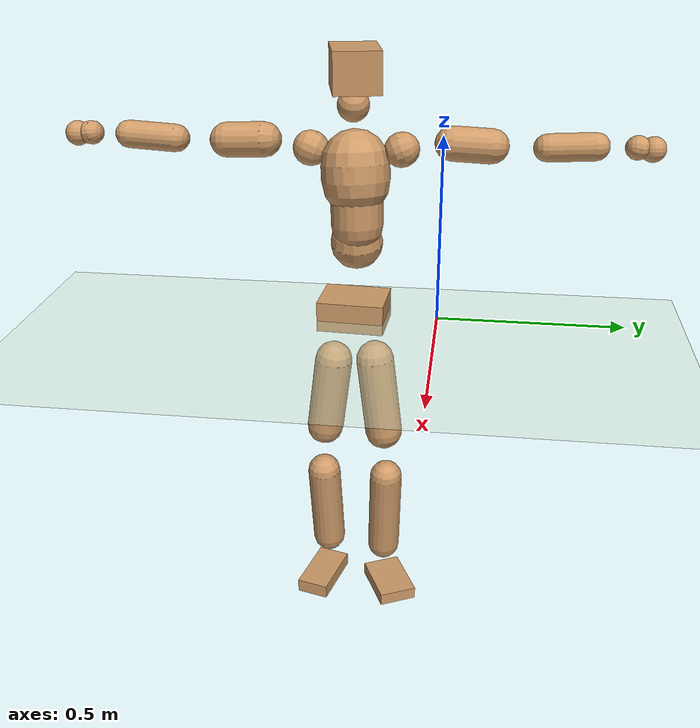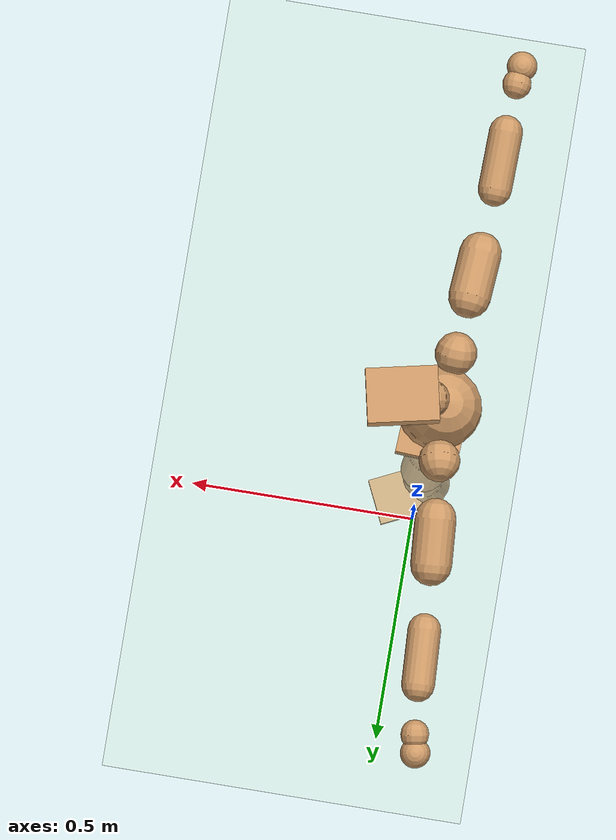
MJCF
<mujoco model="humanoid">
  <compiler coordinate="local" angle="radian"/>
  <default>
    <joint damping="0.0" armature="0.01" stiffness="0.0" limited="true"/>
    <geom conaffinity="1" condim="3" contype="7" margin="0.001" rgba="0.8 0.6 .4 1"/>
  </default>
  <asset>
    <texture type="skybox" builtin="gradient" rgb1=".4 .5 .6" rgb2="0 0 0" width="100" height="100"/>
    <texture builtin="flat" height="1278" mark="cross" markrgb="1 1 1" name="texgeom" random="0.01" rgb1="0.8 0.6 0.4" rgb2="0.8 0.6 0.4" type="cube" width="127"/>
    <texture builtin="checker" height="100" name="texplane" rgb1="0 0 0" rgb2="0.8 0.8 0.8" type="2d" width="100"/>
    <material name="MatPlane" reflectance="0.5" shininess="1" specular="1" texrepeat="60 60" texture="texplane"/>
    <material name="geom" texture="texgeom" texuniform="true"/>
  </asset>
  <worldbody>
    <light cutoff="100" diffuse="1 1 1" dir="-0 0 -1.3" directional="true" exponent="1" pos="0 0 1.3" specular=".1 .1 .1"/>
    <geom conaffinity="1" condim="3" name="floor" pos="0 0 0" rgba="0.8 0.9 0.8 1" size="100 100 .2" type="plane" material="MatPlane"/>
    <body name="Pelvis" pos="-0.0038 -0.2291 0.017">
      <freejoint name="Pelvis"/>
      <geom type="box" contype="1" conaffinity="1" density="5359.374694" pos="-0.0108 0.0006 -0.0078" size="0.0707 0.0908 0.0412" quat="0.9996 0.0000 0.0000 -0.0299" name="Pelvis"/>
      <body name="L_Hip" pos="-0.0185 0.0486 -0.0775">
        <joint name="L_Hip_x" type="hinge" pos="0 0 0" axis="1 0 0" stiffness="1600" damping="160" armature="0.02" range="-180.0000 180.0000"/>
        <joint name="L_Hip_y" type="hinge" pos="0 0 0" axis="0 1 0" stiffness="1600" damping="160" armature="0.02" range="-180.0000 180.0000"/>
        <joint name="L_Hip_z" type="hinge" pos="0 0 0" axis="0 0 1" stiffness="1600" damping="160" armature="0.02" range="-180.0000 180.0000"/>
        <geom type="capsule" contype="1" conaffinity="1" density="2040.816327" size="0.0531" fromto="0.0035 0.0101 -0.0824 0.0131 0.0381 -0.3095" name="L_Hip"/>
        <body name="L_Knee" pos="0.0166 0.0482 -0.3919">
          <joint name="L_Knee_x" type="hinge" pos="0 0 0" axis="1 0 0" stiffness="1600" damping="160" armature="0.02" range="-180.0000 180.0000"/>
          <joint name="L_Knee_y" type="hinge" pos="0 0 0" axis="0 1 0" stiffness="1600" damping="160" armature="0.02" range="-180.0000 180.0000"/>
          <joint name="L_Knee_z" type="hinge" pos="0 0 0" axis="0 0 1" stiffness="1600" damping="160" armature="0.02" range="-180.0000 180.0000"/>
          <geom type="capsule" contype="1" conaffinity="1" density="1234.567901" size="0.0471" fromto="-0.0057 -0.0020 -0.0769 -0.0249 -0.0088 -0.3385" name="L_Knee"/>
          <body name="L_Ankle" pos="-0.0306 -0.0108 -0.4154">
            <joint name="L_Ankle_x" type="hinge" pos="0 0 0" axis="1 0 0" stiffness="1600" damping="160" armature="0.02" range="-180.0000 180.0000"/>
            <joint name="L_Ankle_y" type="hinge" pos="0 0 0" axis="0 1 0" stiffness="1600" damping="160" armature="0.02" range="-180.0000 180.0000"/>
            <joint name="L_Ankle_z" type="hinge" pos="0 0 0" axis="0 0 1" stiffness="1600" damping="160" armature="0.02" range="-180.0000 180.0000"/>
            <geom type="box" contype="1" conaffinity="1" density="999.999972" pos="0.0565 0.0267 -0.0300" size="0.0804 0.0548 0.0182" quat="0.9757 0.0000 0.0000 0.2192" name="L_Ankle"/>
            <body name="L_Toe" pos="0.1129 0.0534 -0.0599">
              <joint name="L_Toe_x" type="hinge" pos="0 0 0" axis="1 0 0" stiffness="1000" damping="100" armature="0.02" range="-180.0000 180.0000"/>
              <joint name="L_Toe_y" type="hinge" pos="0 0 0" axis="0 1 0" stiffness="1000" damping="100" armature="0.02" range="-180.0000 180.0000"/>
              <joint name="L_Toe_z" type="hinge" pos="0 0 0" axis="0 0 1" stiffness="1000" damping="100" armature="0.02" range="-180.0000 180.0000"/>
              <geom type="box" contype="1" conaffinity="1" density="7057068.787945" pos="0.0000 0.0000 0.0327" size="0.001 0.0025 0.001" quat="0.9749 0.0000 0.0000 0.2228" name="L_Toe"/>
            </body>
          </body>
        </body>
      </body>
      <body name="R_Hip" pos="-0.015 -0.0492 -0.086">
        <joint name="R_Hip_x" type="hinge" pos="0 0 0" axis="1 0 0" stiffness="1600" damping="160" armature="0.02" range="-180.0000 180.0000"/>
        <joint name="R_Hip_y" type="hinge" pos="0 0 0" axis="0 1 0" stiffness="1600" damping="160" armature="0.02" range="-180.0000 180.0000"/>
        <joint name="R_Hip_z" type="hinge" pos="0 0 0" axis="0 0 1" stiffness="1600" damping="160" armature="0.02" range="-180.0000 180.0000"/>
        <geom type="capsule" contype="1" conaffinity="1" density="2040.816327" size="0.0523" fromto="0.0005 -0.0101 -0.0816 0.0019 -0.0374 -0.3012" name="R_Hip"/>
        <body name="R_Knee" pos="0.0024 -0.0475 -0.3828">
          <joint name="R_Knee_x" type="hinge" pos="0 0 0" axis="1 0 0" stiffness="1600" damping="160" armature="0.02" range="-180.0000 180.0000"/>
          <joint name="R_Knee_y" type="hinge" pos="0 0 0" axis="0 1 0" stiffness="1600" damping="160" armature="0.02" range="-180.0000 180.0000"/>
          <joint name="R_Knee_z" type="hinge" pos="0 0 0" axis="0 0 1" stiffness="1600" damping="160" armature="0.02" range="-180.0000 180.0000"/>
          <geom type="capsule" contype="1" conaffinity="1" density="1234.567901" size="0.0481" fromto="-0.0056 0.0030 -0.0779 -0.0236 0.0126 -0.3293" name="R_Knee"/>
          <body name="R_Ankle" pos="-0.0292 0.0156 -0.4072">
            <joint name="R_Ankle_x" type="hinge" pos="0 0 0" axis="1 0 0" stiffness="1600" damping="160" armature="0.02" range="-180.0000 180.0000"/>
            <joint name="R_Ankle_y" type="hinge" pos="0 0 0" axis="0 1 0" stiffness="1600" damping="160" armature="0.02" range="-180.0000 180.0000"/>
            <joint name="R_Ankle_z" type="hinge" pos="0 0 0" axis="0 0 1" stiffness="1600" damping="160" armature="0.02" range="-180.0000 180.0000"/>
            <geom type="box" contype="1" conaffinity="1" density="999.999994" pos="0.0612 -0.0156 -0.0304" size="0.0874 0.0465 0.02" quat="0.9923 0.0000 0.0000 -0.1242" name="R_Ankle"/>
            <body name="R_Toe" pos="0.1224 -0.0311 -0.0608">
              <joint name="R_Toe_x" type="hinge" pos="0 0 0" axis="1 0 0" stiffness="1000" damping="100" armature="0.02" range="-180.0000 180.0000"/>
              <joint name="R_Toe_y" type="hinge" pos="0 0 0" axis="0 1 0" stiffness="1000" damping="100" armature="0.02" range="-180.0000 180.0000"/>
              <joint name="R_Toe_z" type="hinge" pos="0 0 0" axis="0 0 1" stiffness="1000" damping="100" armature="0.02" range="-180.0000 180.0000"/>
              <geom type="box" contype="1" conaffinity="1" density="8570280.046836" pos="0.0000 0.0000 0.0319" size="0.0009 0.0023 0.0011" quat="0.9934 0.0000 0.0000 -0.1148" name="R_Toe"/>
            </body>
          </body>
        </body>
      </body>
      <body name="Torso" pos="-0.0312 0.0045 0.1167">
        <joint name="Torso_x" type="hinge" pos="0 0 0" axis="1 0 0" stiffness="2000" damping="200" armature="0.02" range="-180.0000 180.0000"/>
        <joint name="Torso_y" type="hinge" pos="0 0 0" axis="0 1 0" stiffness="2000" damping="200" armature="0.02" range="-180.0000 180.0000"/>
        <joint name="Torso_z" type="hinge" pos="0 0 0" axis="0 0 1" stiffness="2000" damping="200" armature="0.02" range="-180.0000 180.0000"/>
        <geom type="capsule" contype="1" conaffinity="1" density="2040.816327" size="0.0705" fromto="0.0134 0.0027 0.0680 0.0138 0.0027 0.0700" name="Torso"/>
        <body name="Spine" pos="0.0273 0.0054 0.138">
          <joint name="Spine_x" type="hinge" pos="0 0 0" axis="1 0 0" stiffness="2000" damping="200" armature="0.02" range="-180.0000 180.0000"/>
          <joint name="Spine_y" type="hinge" pos="0 0 0" axis="0 1 0" stiffness="2000" damping="200" armature="0.02" range="-180.0000 180.0000"/>
          <joint name="Spine_z" type="hinge" pos="0 0 0" axis="0 0 1" stiffness="2000" damping="200" armature="0.02" range="-180.0000 180.0000"/>
          <geom type="capsule" contype="1" conaffinity="1" density="2040.816327" size="0.0692" fromto="-0.0022 -0.0017 0.0691 0.0005 0.0004 -0.0143" name="Spine"/>
          <body name="Chest" pos="-0.0017 -0.0014 0.0548">
            <joint name="Chest_x" type="hinge" pos="0 0 0" axis="1 0 0" stiffness="2000" damping="200" armature="0.02" range="-180.0000 180.0000"/>
            <joint name="Chest_y" type="hinge" pos="0 0 0" axis="0 1 0" stiffness="2000" damping="200" armature="0.02" range="-180.0000 180.0000"/>
            <joint name="Chest_z" type="hinge" pos="0 0 0" axis="0 0 1" stiffness="2000" damping="200" armature="0.02" range="-180.0000 180.0000"/>
            <geom type="capsule" contype="1" conaffinity="1" density="2040.816327" size="0.0901" fromto="-0.0139 -0.0052 0.0889 -0.0071 -0.0026 0.0452" name="Chest"/>
            <body name="Neck" pos="-0.0167 -0.0112 0.1955">
              <joint name="Neck_x" type="hinge" pos="0 0 0" axis="1 0 0" stiffness="1000" damping="100" armature="0.02" range="-180.0000 180.0000"/>
              <joint name="Neck_y" type="hinge" pos="0 0 0" axis="0 1 0" stiffness="1000" damping="100" armature="0.02" range="-180.0000 180.0000"/>
              <joint name="Neck_z" type="hinge" pos="0 0 0" axis="0 0 1" stiffness="1000" damping="100" armature="0.02" range="-180.0000 180.0000"/>
              <geom type="capsule" contype="1" conaffinity="1" density="1000" size="0.0415" fromto="0.0290 0.0053 0.0482 0.0301 0.0055 0.0499" name="Neck"/>
              <body name="Head" pos="0.0591 0.0109 0.0981">
                <joint name="Head_x" type="hinge" pos="0 0 0" axis="1 0 0" stiffness="1000" damping="100" armature="0.02" range="-180.0000 180.0000"/>
                <joint name="Head_y" type="hinge" pos="0 0 0" axis="0 1 0" stiffness="1000" damping="100" armature="0.02" range="-180.0000 180.0000"/>
                <joint name="Head_z" type="hinge" pos="0 0 0" axis="0 0 1" stiffness="1000" damping="100" armature="0.02" range="-180.0000 180.0000"/>
                <geom type="box" contype="1" conaffinity="1" density="2250.000179" pos="0.0305 0.0064 0.0500" size="0.0772 0.0587 0.051" quat="0.9946 0.0000 0.0000 0.1035" name="Head"/>
              </body>
            </body>
            <body name="L_Thorax" pos="-0.0218 0.0614 0.104">
              <joint name="L_Thorax_x" type="hinge" pos="0 0 0" axis="1 0 0" stiffness="1000" damping="100" armature="0.02" range="-180.0000 180.0000"/>
              <joint name="L_Thorax_y" type="hinge" pos="0 0 0" axis="0 1 0" stiffness="1000" damping="100" armature="0.02" range="-180.0000 180.0000"/>
              <joint name="L_Thorax_z" type="hinge" pos="0 0 0" axis="0 0 1" stiffness="1000" damping="100" armature="0.02" range="-180.0000 180.0000"/>
              <geom type="capsule" contype="1" conaffinity="1" density="1000" size="0.0455" fromto="-0.0066 0.0516 0.0211 -0.0069 0.0535 0.0219" name="L_Thorax"/>
              <body name="L_Shoulder" pos="-0.0135 0.1051 0.043">
                <joint name="L_Shoulder_x" type="hinge" pos="0 0 0" axis="1 0 0" stiffness="1000" damping="100" armature="0.02" range="-720.0000 720.0000"/>
                <joint name="L_Shoulder_y" type="hinge" pos="0 0 0" axis="0 1 0" stiffness="1000" damping="100" armature="0.02" range="-720.0000 720.0000"/>
                <joint name="L_Shoulder_z" type="hinge" pos="0 0 0" axis="0 0 1" stiffness="1000" damping="100" armature="0.02" range="-720.0000 720.0000"/>
                <geom type="capsule" contype="1" conaffinity="1" density="1000" size="0.0453" fromto="-0.0051 0.0750 -0.0044 -0.0119 0.1754 -0.0103" name="L_Shoulder"/>
                <body name="L_Elbow" pos="-0.017 0.2504 -0.0147">
                  <joint name="L_Elbow_x" type="hinge" pos="0 0 0" axis="1 0 0" stiffness="1000" damping="100" armature="0.02" range="-720.0000 720.0000"/>
                  <joint name="L_Elbow_y" type="hinge" pos="0 0 0" axis="0 1 0" stiffness="1000" damping="100" armature="0.02" range="-720.0000 720.0000"/>
                  <joint name="L_Elbow_z" type="hinge" pos="0 0 0" axis="0 0 1" stiffness="1000" damping="100" armature="0.02" range="-720.0000 720.0000"/>
                  <geom type="capsule" contype="1" conaffinity="1" density="1000" size="0.0362" fromto="-0.0031 0.0661 0.0029 -0.0087 0.1866 0.0081" name="L_Elbow"/>
                  <body name="L_Wrist" pos="-0.0118 0.2526 0.0109">
                    <joint name="L_Wrist_x" type="hinge" pos="0 0 0" axis="1 0 0" stiffness="600" damping="60" armature="0.02" range="-180.0000 180.0000"/>
                    <joint name="L_Wrist_y" type="hinge" pos="0 0 0" axis="0 1 0" stiffness="600" damping="60" armature="0.02" range="-180.0000 180.0000"/>
                    <joint name="L_Wrist_z" type="hinge" pos="0 0 0" axis="0 0 1" stiffness="600" damping="60" armature="0.02" range="-180.0000 180.0000"/>
                    <geom type="capsule" contype="1" conaffinity="1" density="1000" size="0.0312" fromto="-0.0071 0.0390 -0.0047 -0.0074 0.0409 -0.0050" name="L_Wrist"/>
                    <body name="L_Hand" pos="-0.0145 0.0799 -0.0097">
                      <joint name="L_Hand_x" type="hinge" pos="0 0 0" axis="1 0 0" stiffness="600" damping="60" armature="0.02" range="-180.0000 180.0000"/>
                      <joint name="L_Hand_y" type="hinge" pos="0 0 0" axis="0 1 0" stiffness="600" damping="60" armature="0.02" range="-180.0000 180.0000"/>
                      <joint name="L_Hand_z" type="hinge" pos="0 0 0" axis="0 0 1" stiffness="600" damping="60" armature="0.02" range="-180.0000 180.0000"/>
                      <geom type="sphere" contype="1" conaffinity="1" density="1000" size="0.0328" pos="0.0000 0.0000 0.0000" name="L_Hand"/>
                    </body>
                  </body>
                </body>
              </body>
            </body>
            <body name="R_Thorax" pos="-0.0243 -0.0737 0.1027">
              <joint name="R_Thorax_x" type="hinge" pos="0 0 0" axis="1 0 0" stiffness="1000" damping="100" armature="0.02" range="-180.0000 180.0000"/>
              <joint name="R_Thorax_y" type="hinge" pos="0 0 0" axis="0 1 0" stiffness="1000" damping="100" armature="0.02" range="-180.0000 180.0000"/>
              <joint name="R_Thorax_z" type="hinge" pos="0 0 0" axis="0 0 1" stiffness="1000" damping="100" armature="0.02" range="-180.0000 180.0000"/>
              <geom type="capsule" contype="1" conaffinity="1" density="1000" size="0.0462" fromto="-0.0023 -0.0481 0.0207 -0.0024 -0.0499 0.0214" name="R_Thorax"/>
              <body name="R_Shoulder" pos="-0.0047 -0.098 0.0421">
                <joint name="R_Shoulder_x" type="hinge" pos="0 0 0" axis="1 0 0" stiffness="1000" damping="100" armature="0.02" range="-720.0000 720.0000"/>
                <joint name="R_Shoulder_y" type="hinge" pos="0 0 0" axis="0 1 0" stiffness="1000" damping="100" armature="0.02" range="-720.0000 720.0000"/>
                <joint name="R_Shoulder_z" type="hinge" pos="0 0 0" axis="0 0 1" stiffness="1000" damping="100" armature="0.02" range="-720.0000 720.0000"/>
                <geom type="capsule" contype="1" conaffinity="1" density="1000" size="0.0464" fromto="-0.0065 -0.0760 -0.0048 -0.0149 -0.1756 -0.0112" name="R_Shoulder"/>
                <body name="R_Elbow" pos="-0.0214 -0.2516 -0.016">
                  <joint name="R_Elbow_x" type="hinge" pos="0 0 0" axis="1 0 0" stiffness="1000" damping="100" armature="0.02" range="-720.0000 720.0000"/>
                  <joint name="R_Elbow_y" type="hinge" pos="0 0 0" axis="0 1 0" stiffness="1000" damping="100" armature="0.02" range="-720.0000 720.0000"/>
                  <joint name="R_Elbow_z" type="hinge" pos="0 0 0" axis="0 0 1" stiffness="1000" damping="100" armature="0.02" range="-720.0000 720.0000"/>
                  <geom type="capsule" contype="1" conaffinity="1" density="1000" size="0.0368" fromto="-0.0020 -0.0667 0.0033 -0.0057 -0.1946 0.0096" name="R_Elbow"/>
                  <body name="R_Wrist" pos="-0.0077 -0.2613 0.0129">
                    <joint name="R_Wrist_x" type="hinge" pos="0 0 0" axis="1 0 0" stiffness="600" damping="60" armature="0.02" range="-180.0000 180.0000"/>
                    <joint name="R_Wrist_y" type="hinge" pos="0 0 0" axis="0 1 0" stiffness="600" damping="60" armature="0.02" range="-180.0000 180.0000"/>
                    <joint name="R_Wrist_z" type="hinge" pos="0 0 0" axis="0 0 1" stiffness="600" damping="60" armature="0.02" range="-180.0000 180.0000"/>
                    <geom type="capsule" contype="1" conaffinity="1" density="1000" size="0.0317" fromto="-0.0048 -0.0399 -0.0038 -0.0050 -0.0419 -0.0040" name="R_Wrist"/>
                    <body name="R_Hand" pos="-0.0098 -0.0819 -0.0078">
                      <joint name="R_Hand_x" type="hinge" pos="0 0 0" axis="1 0 0" stiffness="600" damping="60" armature="0.02" range="-180.0000 180.0000"/>
                      <joint name="R_Hand_y" type="hinge" pos="0 0 0" axis="0 1 0" stiffness="600" damping="60" armature="0.02" range="-180.0000 180.0000"/>
                      <joint name="R_Hand_z" type="hinge" pos="0 0 0" axis="0 0 1" stiffness="600" damping="60" armature="0.02" range="-180.0000 180.0000"/>
                      <geom type="sphere" contype="1" conaffinity="1" density="1000" size="0.0332" pos="0.0000 0.0000 0.0000" name="R_Hand"/>
                    </body>
                  </body>
                </body>
              </body>
            </body>
          </body>
        </body>
      </body>
    </body>
  </worldbody>
  <actuator>
    <motor name="L_Hip_x" joint="L_Hip_x" gear="500"/>
    <motor name="L_Hip_y" joint="L_Hip_y" gear="500"/>
    <motor name="L_Hip_z" joint="L_Hip_z" gear="500"/>
    <motor name="L_Knee_x" joint="L_Knee_x" gear="500"/>
    <motor name="L_Knee_y" joint="L_Knee_y" gear="500"/>
    <motor name="L_Knee_z" joint="L_Knee_z" gear="500"/>
    <motor name="L_Ankle_x" joint="L_Ankle_x" gear="500"/>
    <motor name="L_Ankle_y" joint="L_Ankle_y" gear="500"/>
    <motor name="L_Ankle_z" joint="L_Ankle_z" gear="500"/>
    <motor name="L_Toe_x" joint="L_Toe_x" gear="500"/>
    <motor name="L_Toe_y" joint="L_Toe_y" gear="500"/>
    <motor name="L_Toe_z" joint="L_Toe_z" gear="500"/>
    <motor name="R_Hip_x" joint="R_Hip_x" gear="500"/>
    <motor name="R_Hip_y" joint="R_Hip_y" gear="500"/>
    <motor name="R_Hip_z" joint="R_Hip_z" gear="500"/>
    <motor name="R_Knee_x" joint="R_Knee_x" gear="500"/>
    <motor name="R_Knee_y" joint="R_Knee_y" gear="500"/>
    <motor name="R_Knee_z" joint="R_Knee_z" gear="500"/>
    <motor name="R_Ankle_x" joint="R_Ankle_x" gear="500"/>
    <motor name="R_Ankle_y" joint="R_Ankle_y" gear="500"/>
    <motor name="R_Ankle_z" joint="R_Ankle_z" gear="500"/>
    <motor name="R_Toe_x" joint="R_Toe_x" gear="500"/>
    <motor name="R_Toe_y" joint="R_Toe_y" gear="500"/>
    <motor name="R_Toe_z" joint="R_Toe_z" gear="500"/>
    <motor name="Torso_x" joint="Torso_x" gear="500"/>
    <motor name="Torso_y" joint="Torso_y" gear="500"/>
    <motor name="Torso_z" joint="Torso_z" gear="500"/>
    <motor name="Spine_x" joint="Spine_x" gear="500"/>
    <motor name="Spine_y" joint="Spine_y" gear="500"/>
    <motor name="Spine_z" joint="Spine_z" gear="500"/>
    <motor name="Chest_x" joint="Chest_x" gear="500"/>
    <motor name="Chest_y" joint="Chest_y" gear="500"/>
    <motor name="Chest_z" joint="Chest_z" gear="500"/>
    <motor name="Neck_x" joint="Neck_x" gear="500"/>
    <motor name="Neck_y" joint="Neck_y" gear="500"/>
    <motor name="Neck_z" joint="Neck_z" gear="500"/>
    <motor name="Head_x" joint="Head_x" gear="500"/>
    <motor name="Head_y" joint="Head_y" gear="500"/>
    <motor name="Head_z" joint="Head_z" gear="500"/>
    <motor name="L_Thorax_x" joint="L_Thorax_x" gear="500"/>
    <motor name="L_Thorax_y" joint="L_Thorax_y" gear="500"/>
    <motor name="L_Thorax_z" joint="L_Thorax_z" gear="500"/>
    <motor name="L_Shoulder_x" joint="L_Shoulder_x" gear="500"/>
    <motor name="L_Shoulder_y" joint="L_Shoulder_y" gear="500"/>
    <motor name="L_Shoulder_z" joint="L_Shoulder_z" gear="500"/>
    <motor name="L_Elbow_x" joint="L_Elbow_x" gear="500"/>
    <motor name="L_Elbow_y" joint="L_Elbow_y" gear="500"/>
    <motor name="L_Elbow_z" joint="L_Elbow_z" gear="500"/>
    <motor name="L_Wrist_x" joint="L_Wrist_x" gear="500"/>
    <motor name="L_Wrist_y" joint="L_Wrist_y" gear="500"/>
    <motor name="L_Wrist_z" joint="L_Wrist_z" gear="500"/>
    <motor name="L_Hand_x" joint="L_Hand_x" gear="500"/>
    <motor name="L_Hand_y" joint="L_Hand_y" gear="500"/>
    <motor name="L_Hand_z" joint="L_Hand_z" gear="500"/>
    <motor name="R_Thorax_x" joint="R_Thorax_x" gear="500"/>
    <motor name="R_Thorax_y" joint="R_Thorax_y" gear="500"/>
    <motor name="R_Thorax_z" joint="R_Thorax_z" gear="500"/>
    <motor name="R_Shoulder_x" joint="R_Shoulder_x" gear="500"/>
    <motor name="R_Shoulder_y" joint="R_Shoulder_y" gear="500"/>
    <motor name="R_Shoulder_z" joint="R_Shoulder_z" gear="500"/>
    <motor name="R_Elbow_x" joint="R_Elbow_x" gear="500"/>
    <motor name="R_Elbow_y" joint="R_Elbow_y" gear="500"/>
    <motor name="R_Elbow_z" joint="R_Elbow_z" gear="500"/>
    <motor name="R_Wrist_x" joint="R_Wrist_x" gear="500"/>
    <motor name="R_Wrist_y" joint="R_Wrist_y" gear="500"/>
    <motor name="R_Wrist_z" joint="R_Wrist_z" gear="500"/>
    <motor name="R_Hand_x" joint="R_Hand_x" gear="500"/>
    <motor name="R_Hand_y" joint="R_Hand_y" gear="500"/>
    <motor name="R_Hand_z" joint="R_Hand_z" gear="500"/>
  </actuator>
  <contact>
    <exclude body1="Torso" body2="Chest"/>
    <exclude body1="Head" body2="Chest"/>
    <exclude body1="R_Knee" body2="R_Toe"/>
    <exclude body1="R_Knee" body2="L_Ankle"/>
    <exclude body1="R_Knee" body2="L_Toe"/>
    <exclude body1="L_Knee" body2="L_Toe"/>
    <exclude body1="L_Knee" body2="R_Ankle"/>
    <exclude body1="L_Knee" body2="R_Toe"/>
    <exclude body1="L_Shoulder" body2="Chest"/>
    <exclude body1="R_Shoulder" body2="Chest"/>
  </contact>
  <sensor/>
  <size njmax="700" nconmax="700"/>
</mujoco>
